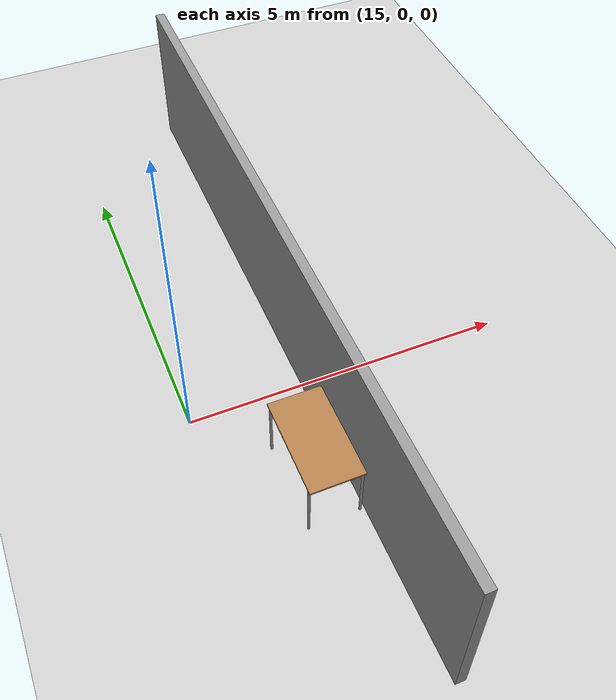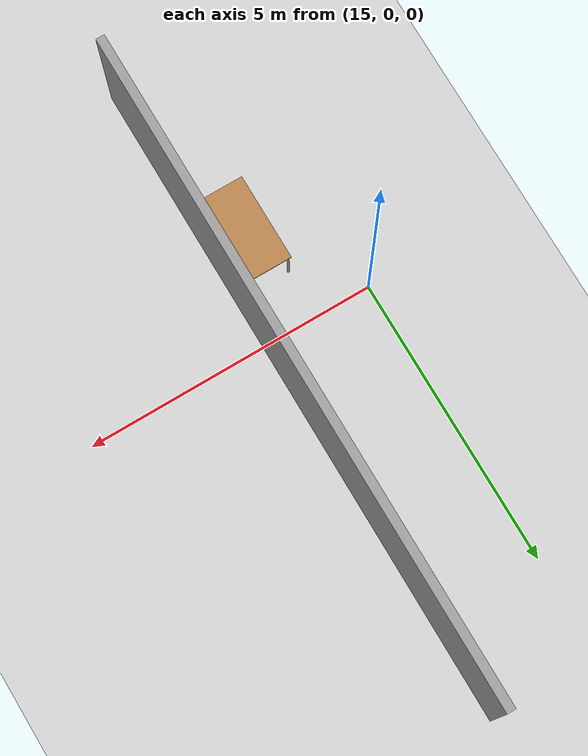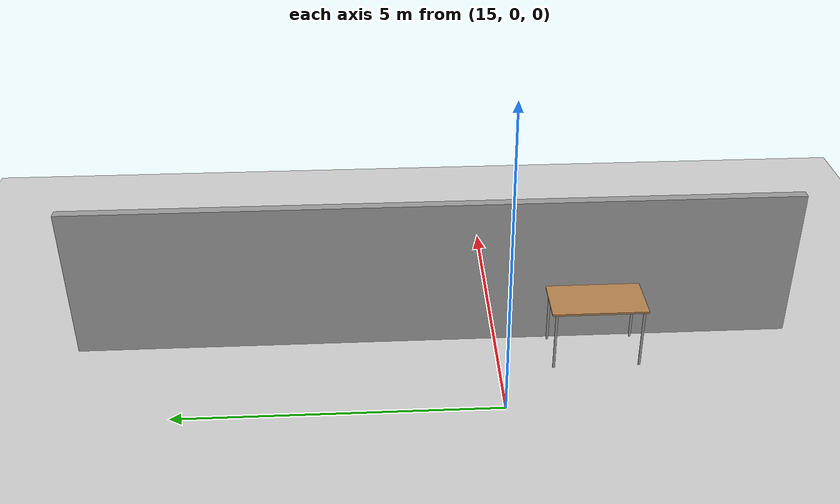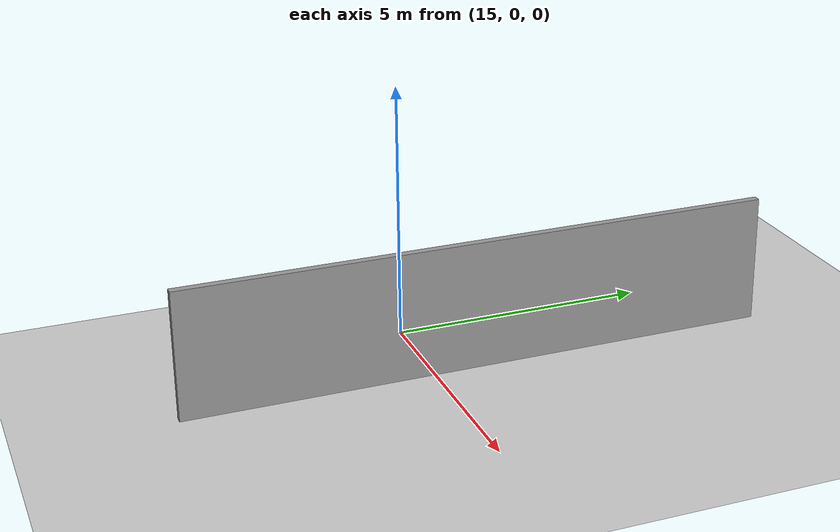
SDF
<sdf version="1.6">
 <world name="default">
  <model name="ground_plane">
   <static>1</static>
   <link name="link">
    <collision name="collision">
     <geometry><plane><normal>0 0 1</normal><size>100 100</size></plane></geometry>
     <surface>
      <contact><collide_bitmask>65535</collide_bitmask></contact>
      <friction><ode><mu>100</mu><mu2>50</mu2></ode></friction>
     </surface>
    </collision>
    <visual name="visual">
     <cast_shadows>0</cast_shadows>
     <geometry><plane><normal>0 0 1</normal><size>100 100</size></plane></geometry>
     <material>
      <script><uri>file://media/materials/scripts/gazebo.material</uri><name>Gazebo/Grey</name></script>
     </material>
    </visual>
   </link>
  </model>
  <model name="dunder_mifflin_scranton_full">
   <pose>4.5312 0.479645 0 0 -0 0</pose>
   <link name="Wall_7">
    <collision name="Wall_7_Collision">
     <geometry><box><size>11.5 0.15 2.5</size></box></geometry>
     <pose>0 0 1.25 0 -0 0</pose>
    </collision>
    <visual name="Wall_7_Visual">
     <pose>0 0 1.25 0 -0 0</pose>
     <geometry><box><size>11.5 0.15 2.5</size></box></geometry>
     <material>
      <script><uri>file://media/materials/scripts/gazebo.material</uri><name>Gazebo/Grey</name></script>
      <ambient>1 1 1 1</ambient>
     </material>
     <meta><layer>0</layer></meta>
    </visual>
    <pose>12.3179 0.475 0 0 -0 -1.5708</pose>
   </link>
   <static>1</static>
  </model>
  <model name="table_15">
   <static>1</static>
   <link name="link">
    <collision name="surface">
     <pose>0 0 1 0 -0 0</pose>
     <geometry><box><size>1.5 0.8 0.03</size></box></geometry>
     <surface><friction><ode><mu>0.6</mu><mu2>0.6</mu2></ode></friction></surface>
    </collision>
    <visual name="visual1">
     <pose>0 0 1 0 -0 0</pose>
     <geometry><box><size>1.5 0.8 0.03</size></box></geometry>
     <material>
      <script><uri>file://media/materials/scripts/gazebo.material</uri><name>Gazebo/Wood</name></script>
     </material>
    </visual>
    <collision name="front_left_leg">
     <pose>0.68 0.38 0.5 0 -0 0</pose>
     <geometry><cylinder><radius>0.02</radius><length>1</length></cylinder></geometry>
    </collision>
    <visual name="front_left_leg">
     <pose>0.68 0.38 0.5 0 -0 0</pose>
     <geometry><cylinder><radius>0.02</radius><length>1</length></cylinder></geometry>
     <material>
      <script><uri>file://media/materials/scripts/gazebo.material</uri><name>Gazebo/Grey</name></script>
     </material>
    </visual>
    <collision name="front_right_leg">
     <pose>0.68 -0.38 0.5 0 -0 0</pose>
     <geometry><cylinder><radius>0.02</radius><length>1</length></cylinder></geometry>
    </collision>
    <visual name="front_right_leg">
     <pose>0.68 -0.38 0.5 0 -0 0</pose>
     <geometry><cylinder><radius>0.02</radius><length>1</length></cylinder></geometry>
     <material>
      <script><uri>file://media/materials/scripts/gazebo.material</uri><name>Gazebo/Grey</name></script>
     </material>
    </visual>
    <collision name="back_right_leg">
     <pose>-0.68 -0.38 0.5 0 -0 0</pose>
     <geometry><cylinder><radius>0.02</radius><length>1</length></cylinder></geometry>
    </collision>
    <visual name="back_right_leg">
     <pose>-0.68 -0.38 0.5 0 -0 0</pose>
     <geometry><cylinder><radius>0.02</radius><length>1</length></cylinder></geometry>
     <material>
      <script><uri>file://media/materials/scripts/gazebo.material</uri><name>Gazebo/Grey</name></script>
     </material>
    </visual>
    <collision name="back_left_leg">
     <pose>-0.68 0.38 0.5 0 -0 0</pose>
     <geometry><cylinder><radius>0.02</radius><length>1</length></cylinder></geometry>
    </collision>
    <visual name="back_left_leg">
     <pose>-0.68 0.38 0.5 0 -0 0</pose>
     <geometry><cylinder><radius>0.02</radius><length>1</length></cylinder></geometry>
     <material>
      <script><uri>file://media/materials/scripts/gazebo.material</uri><name>Gazebo/Grey</name></script>
     </material>
    </visual>
   </link>
   <pose>16.3327 -1.54177 0 0 0 -1.5708</pose>
  </model>
 </world>
</sdf>
